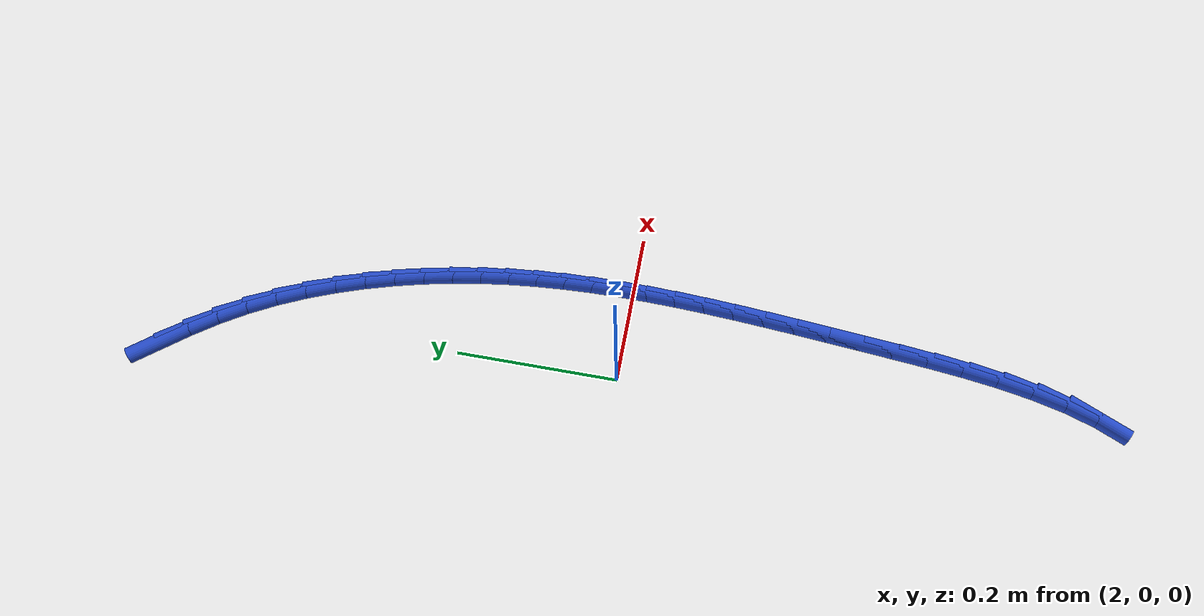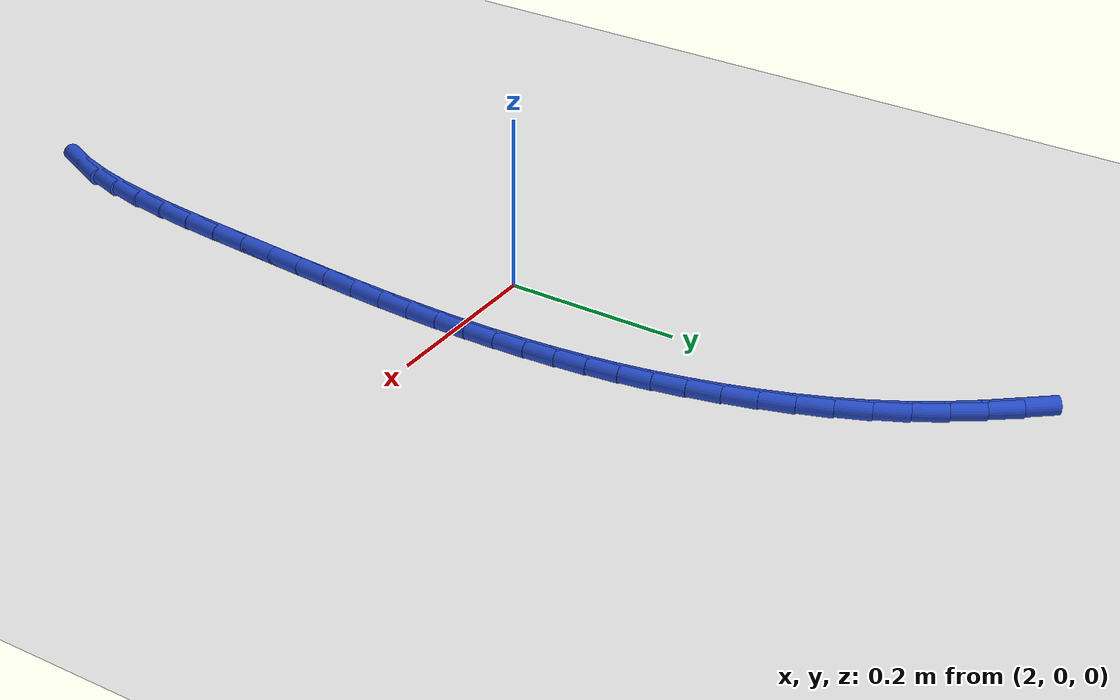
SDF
<sdf version="1.6">
 <world name="default">
  <model name="ground_plane">
   <static>1</static>
   <link name="link">
    <collision name="collision">
     <geometry><plane><normal>0 0 1</normal><size>100 100</size></plane></geometry>
     <surface><friction><ode><mu>100</mu><mu2>50</mu2></ode></friction></surface>
    </collision>
    <visual name="visual">
     <cast_shadows>0</cast_shadows>
     <geometry><plane><normal>0 0 1</normal><size>100 100</size></plane></geometry>
     <material>
      <script><uri>file://media/materials/scripts/gazebo.material</uri><name>Gazebo/WhiteGlow</name></script>
     </material>
    </visual>
   </link>
  </model>
  <model name="line">
   <link name="link_78">
    <pose>1.944774916218031 0.5652758298255309 0.01 0 1.57 -0.8791202230788645</pose>
    <collision name="collision">
     <geometry><cylinder><radius>0.01</radius><length>0.08</length></cylinder></geometry>
    </collision>
    <visual name="visual">
     <material>
      <script><name>Gazebo/Blue</name><uri>file://media/materials/scripts/gazebo.material</uri></script>
     </material>
     <geometry><cylinder><radius>0.01</radius><length>0.08</length></cylinder></geometry>
    </visual>
   </link>
   <link name="link_79">
    <pose>1.9686140292851744 0.5364901179324171 0.01 0 1.57 -0.9291676722682415</pose>
    <collision name="collision">
     <geometry><cylinder><radius>0.01</radius><length>0.08</length></cylinder></geometry>
    </collision>
    <visual name="visual">
     <material>
      <script><name>Gazebo/Blue</name><uri>file://media/materials/scripts/gazebo.material</uri></script>
     </material>
     <geometry><cylinder><radius>0.01</radius><length>0.08</length></cylinder></geometry>
    </visual>
   </link>
   <link name="link_80">
    <pose>1.9909600246307853 0.5065789390617728 0.01 0 1.57 -0.9943382158317963</pose>
    <collision name="collision">
     <geometry><cylinder><radius>0.01</radius><length>0.08</length></cylinder></geometry>
    </collision>
    <visual name="visual">
     <material>
      <script><name>Gazebo/Blue</name><uri>file://media/materials/scripts/gazebo.material</uri></script>
     </material>
     <geometry><cylinder><radius>0.01</radius><length>0.08</length></cylinder></geometry>
    </visual>
   </link>
   <link name="link_81">
    <pose>2.011349464866684 0.475216259039782 0.01 0 1.57 -1.0620050777316024</pose>
    <collision name="collision">
     <geometry><cylinder><radius>0.01</radius><length>0.08</length></cylinder></geometry>
    </collision>
    <visual name="visual">
     <material>
      <script><name>Gazebo/Blue</name><uri>file://media/materials/scripts/gazebo.material</uri></script>
     </material>
     <geometry><cylinder><radius>0.01</radius><length>0.08</length></cylinder></geometry>
    </visual>
   </link>
   <link name="link_82">
    <pose>2.0296409239849234 0.4424225161023843 0.01 0 1.57 -1.1236459514079808</pose>
    <collision name="collision">
     <geometry><cylinder><radius>0.01</radius><length>0.08</length></cylinder></geometry>
    </collision>
    <visual name="visual">
     <material>
      <script><name>Gazebo/Blue</name><uri>file://media/materials/scripts/gazebo.material</uri></script>
     </material>
     <geometry><cylinder><radius>0.01</radius><length>0.08</length></cylinder></geometry>
    </visual>
   </link>
   <link name="link_83">
    <pose>2.0459241757166997 0.4084669109072054 0.01 0 1.57 -1.1796291408422006</pose>
    <collision name="collision">
     <geometry><cylinder><radius>0.01</radius><length>0.08</length></cylinder></geometry>
    </collision>
    <visual name="visual">
     <material>
      <script><name>Gazebo/Blue</name><uri>file://media/materials/scripts/gazebo.material</uri></script>
     </material>
     <geometry><cylinder><radius>0.01</radius><length>0.08</length></cylinder></geometry>
    </visual>
   </link>
   <link name="link_84">
    <pose>2.0602940522385462 0.3736240868131309 0.01 0 1.57 -1.2305594287294674</pose>
    <collision name="collision">
     <geometry><cylinder><radius>0.01</radius><length>0.08</length></cylinder></geometry>
    </collision>
    <visual name="visual">
     <material>
      <script><name>Gazebo/Blue</name><uri>file://media/materials/scripts/gazebo.material</uri></script>
     </material>
     <geometry><cylinder><radius>0.01</radius><length>0.08</length></cylinder></geometry>
    </visual>
   </link>
   <link name="link_85">
    <pose>2.072845385726996 0.33816868717904797 0.01 0 1.57 -1.2770439581886877</pose>
    <collision name="collision">
     <geometry><cylinder><radius>0.01</radius><length>0.08</length></cylinder></geometry>
    </collision>
    <visual name="visual">
     <material>
      <script><name>Gazebo/Blue</name><uri>file://media/materials/scripts/gazebo.material</uri></script>
     </material>
     <geometry><cylinder><radius>0.01</radius><length>0.08</length></cylinder></geometry>
    </visual>
   </link>
   <link name="link_86">
    <pose>2.083673008358583 0.30237535536384347 0.01 0 1.57 -1.3196696410484323</pose>
    <collision name="collision">
     <geometry><cylinder><radius>0.01</radius><length>0.08</length></cylinder></geometry>
    </collision>
    <visual name="visual">
     <material>
      <script><name>Gazebo/Blue</name><uri>file://media/materials/scripts/gazebo.material</uri></script>
     </material>
     <geometry><cylinder><radius>0.01</radius><length>0.08</length></cylinder></geometry>
    </visual>
   </link>
   <link name="link_87">
    <pose>2.0928717523098395 0.2665187347264031 0.01 0 1.57 -1.3592023622118092</pose>
    <collision name="collision">
     <geometry><cylinder><radius>0.01</radius><length>0.08</length></cylinder></geometry>
    </collision>
    <visual name="visual">
     <material>
      <script><name>Gazebo/Blue</name><uri>file://media/materials/scripts/gazebo.material</uri></script>
     </material>
     <geometry><cylinder><radius>0.01</radius><length>0.08</length></cylinder></geometry>
    </visual>
   </link>
   <link name="link_88">
    <pose>2.100536354130952 0.23083779070639915 0.01 0 1.57 -1.3972172310658537</pose>
    <collision name="collision">
     <geometry><cylinder><radius>0.01</radius><length>0.08</length></cylinder></geometry>
    </collision>
    <visual name="visual">
     <material>
      <script><name>Gazebo/Blue</name><uri>file://media/materials/scripts/gazebo.material</uri></script>
     </material>
     <geometry><cylinder><radius>0.01</radius><length>0.08</length></cylinder></geometry>
    </visual>
   </link>
   <link name="link_89">
    <pose>2.1067609259574747 0.19533852141580477 0.01 0 1.57 -1.4338703650236162</pose>
    <collision name="collision">
     <geometry><cylinder><radius>0.01</radius><length>0.08</length></cylinder></geometry>
    </collision>
    <visual name="visual">
     <material>
      <script><name>Gazebo/Blue</name><uri>file://media/materials/scripts/gazebo.material</uri></script>
     </material>
     <geometry><cylinder><radius>0.01</radius><length>0.08</length></cylinder></geometry>
    </visual>
   </link>
   <link name="link_90">
    <pose>2.1116393293129714 0.1599334223433667 0.01 0 1.57 -1.4687164907419754</pose>
    <collision name="collision">
     <geometry><cylinder><radius>0.01</radius><length>0.08</length></cylinder></geometry>
    </collision>
    <visual name="visual">
     <material>
      <script><name>Gazebo/Blue</name><uri>file://media/materials/scripts/gazebo.material</uri></script>
     </material>
     <geometry><cylinder><radius>0.01</radius><length>0.08</length></cylinder></geometry>
    </visual>
   </link>
   <link name="link_91">
    <pose>2.1152654250460268 0.12453473714485148 0.01 0 1.57 -1.5013577793032287</pose>
    <collision name="collision">
     <geometry><cylinder><radius>0.01</radius><length>0.08</length></cylinder></geometry>
    </collision>
    <visual name="visual">
     <material>
      <script><name>Gazebo/Blue</name><uri>file://media/materials/scripts/gazebo.material</uri></script>
     </material>
     <geometry><cylinder><radius>0.01</radius><length>0.08</length></cylinder></geometry>
    </visual>
   </link>
   <link name="link_92">
    <pose>2.117733074005224 0.08905470947602682 0.01 0 1.57 -1.5314590585920094</pose>
    <collision name="collision">
     <geometry><cylinder><radius>0.01</radius><length>0.08</length></cylinder></geometry>
    </collision>
    <visual name="visual">
     <material>
      <script><name>Gazebo/Blue</name><uri>file://media/materials/scripts/gazebo.material</uri></script>
     </material>
     <geometry><cylinder><radius>0.01</radius><length>0.08</length></cylinder></geometry>
    </visual>
   </link>
   <link name="link_93">
    <pose>2.1191361370391486 0.053405582992660385 0.01 0 1.57 -1.5587560748483984</pose>
    <collision name="collision">
     <geometry><cylinder><radius>0.01</radius><length>0.08</length></cylinder></geometry>
    </collision>
    <visual name="visual">
     <material>
      <script><name>Gazebo/Blue</name><uri>file://media/materials/scripts/gazebo.material</uri></script>
     </material>
     <geometry><cylinder><radius>0.01</radius><length>0.08</length></cylinder></geometry>
    </visual>
   </link>
   <link name="link_94">
    <pose>2.1195684749963832 0.017499601350518687 0.01 0 1.57 1.5585343483553684</pose>
    <collision name="collision">
     <geometry><cylinder><radius>0.01</radius><length>0.08</length></cylinder></geometry>
    </collision>
    <visual name="visual">
     <material>
      <script><name>Gazebo/Blue</name><uri>file://media/materials/scripts/gazebo.material</uri></script>
     </material>
     <geometry><cylinder><radius>0.01</radius><length>0.08</length></cylinder></geometry>
    </visual>
   </link>
   <link name="link_95">
    <pose>2.119123948725513 -0.018750991794630575 0.01 0 1.57 1.5373455983250117</pose>
    <collision name="collision">
     <geometry><cylinder><radius>0.01</radius><length>0.08</length></cylinder></geometry>
    </collision>
    <visual name="visual">
     <material>
      <script><name>Gazebo/Blue</name><uri>file://media/materials/scripts/gazebo.material</uri></script>
     </material>
     <geometry><cylinder><radius>0.01</radius><length>0.08</length></cylinder></geometry>
    </visual>
   </link>
   <link name="link_96">
    <pose>2.1178964190751213 -0.05543395278702018 0.01 0 1.57 1.5193226625153515</pose>
    <collision name="collision">
     <geometry><cylinder><radius>0.01</radius><length>0.08</length></cylinder></geometry>
    </collision>
    <visual name="visual">
     <material>
      <script><name>Gazebo/Blue</name><uri>file://media/materials/scripts/gazebo.material</uri></script>
     </material>
     <geometry><cylinder><radius>0.01</radius><length>0.08</length></cylinder></geometry>
    </visual>
   </link>
   <link name="link_97">
    <pose>2.115979746893793 -0.09263703797088277 0.01 0 1.57 1.504459272738255</pose>
    <collision name="collision">
     <geometry><cylinder><radius>0.01</radius><length>0.08</length></cylinder></geometry>
    </collision>
    <visual name="visual">
     <material>
      <script><name>Gazebo/Blue</name><uri>file://media/materials/scripts/gazebo.material</uri></script>
     </material>
     <geometry><cylinder><radius>0.01</radius><length>0.08</length></cylinder></geometry>
    </visual>
   </link>
   <link name="link_98">
    <pose>2.113467793030111 -0.13044800369045023 0.01 0 1.57 1.492699437261412</pose>
    <collision name="collision">
     <geometry><cylinder><radius>0.01</radius><length>0.08</length></cylinder></geometry>
    </collision>
    <visual name="visual">
     <material>
      <script><name>Gazebo/Blue</name><uri>file://media/materials/scripts/gazebo.material</uri></script>
     </material>
     <geometry><cylinder><radius>0.01</radius><length>0.08</length></cylinder></geometry>
    </visual>
   </link>
   <link name="link_99">
    <pose>2.110454418332661 -0.16895460628995693 0.01 0 1.57 1.483946505702313</pose>
    <collision name="collision">
     <geometry><cylinder><radius>0.01</radius><length>0.08</length></cylinder></geometry>
    </collision>
    <visual name="visual">
     <material>
      <script><name>Gazebo/Blue</name><uri>file://media/materials/scripts/gazebo.material</uri></script>
     </material>
     <geometry><cylinder><radius>0.01</radius><length>0.08</length></cylinder></geometry>
    </visual>
   </link>
   <link name="link_100">
    <pose>2.1070334836500257 -0.2082446021136347 0.01 0 1.57 1.4780717698333152</pose>
    <collision name="collision">
     <geometry><cylinder><radius>0.01</radius><length>0.08</length></cylinder></geometry>
    </collision>
    <visual name="visual">
     <material>
      <script><name>Gazebo/Blue</name><uri>file://media/materials/scripts/gazebo.material</uri></script>
     </material>
     <geometry><cylinder><radius>0.01</radius><length>0.08</length></cylinder></geometry>
    </visual>
   </link>
   <link name="link_101">
    <pose>2.10329884983079 -0.2484057475057163 0.01 0 1.57 1.47492221544548</pose>
    <collision name="collision">
     <geometry><cylinder><radius>0.01</radius><length>0.08</length></cylinder></geometry>
    </collision>
    <visual name="visual">
     <material>
      <script><name>Gazebo/Blue</name><uri>file://media/materials/scripts/gazebo.material</uri></script>
     </material>
     <geometry><cylinder><radius>0.01</radius><length>0.08</length></cylinder></geometry>
    </visual>
   </link>
   <link name="link_102">
    <pose>2.0993443777235377 -0.28952579881043444 0.01 0 1.57 1.4741501102412535</pose>
    <collision name="collision">
     <geometry><cylinder><radius>0.01</radius><length>0.08</length></cylinder></geometry>
    </collision>
    <visual name="visual">
     <material>
      <script><name>Gazebo/Blue</name><uri>file://media/materials/scripts/gazebo.material</uri></script>
     </material>
     <geometry><cylinder><radius>0.01</radius><length>0.08</length></cylinder></geometry>
    </visual>
   </link>
   <link name="link_103">
    <pose>2.09525727240184 -0.3316833953058666 0.01 0 1.57 1.4693651388695954</pose>
    <collision name="collision">
     <geometry><cylinder><radius>0.01</radius><length>0.08</length></cylinder></geometry>
    </collision>
    <visual name="visual">
     <material>
      <script><name>Gazebo/Blue</name><uri>file://media/materials/scripts/gazebo.material</uri></script>
     </material>
     <geometry><cylinder><radius>0.01</radius><length>0.08</length></cylinder></geometry>
    </visual>
   </link>
   <link name="link_104">
    <pose>2.090886114992264 -0.37463030970582156 0.01 0 1.57 1.4528320907970085</pose>
    <collision name="collision">
     <geometry><cylinder><radius>0.01</radius><length>0.08</length></cylinder></geometry>
    </collision>
    <visual name="visual">
     <material>
      <script><name>Gazebo/Blue</name><uri>file://media/materials/scripts/gazebo.material</uri></script>
     </material>
     <geometry><cylinder><radius>0.01</radius><length>0.08</length></cylinder></geometry>
    </visual>
   </link>
   <link name="link_105">
    <pose>2.085780667340887 -0.41770899272278444 0.01 0 1.57 1.4235209904421262</pose>
    <collision name="collision">
     <geometry><cylinder><radius>0.01</radius><length>0.08</length></cylinder></geometry>
    </collision>
    <visual name="visual">
     <material>
      <script><name>Gazebo/Blue</name><uri>file://media/materials/scripts/gazebo.material</uri></script>
     </material>
     <geometry><cylinder><radius>0.01</radius><length>0.08</length></cylinder></geometry>
    </visual>
   </link>
   <link name="link_106">
    <pose>2.0794718051570897 -0.46023602488022175 0.01 0 1.57 1.3798591222710719</pose>
    <collision name="collision">
     <geometry><cylinder><radius>0.01</radius><length>0.08</length></cylinder></geometry>
    </collision>
    <visual name="visual">
     <material>
      <script><name>Gazebo/Blue</name><uri>file://media/materials/scripts/gazebo.material</uri></script>
     </material>
     <geometry><cylinder><radius>0.01</radius><length>0.08</length></cylinder></geometry>
    </visual>
   </link>
   <link name="link_107">
    <pose>2.071490404150254 -0.5015279867015969 0.01 0 1.57 1.3191431128845335</pose>
    <collision name="collision">
     <geometry><cylinder><radius>0.01</radius><length>0.08</length></cylinder></geometry>
    </collision>
    <visual name="visual">
     <material>
      <script><name>Gazebo/Blue</name><uri>file://media/materials/scripts/gazebo.material</uri></script>
     </material>
     <geometry><cylinder><radius>0.01</radius><length>0.08</length></cylinder></geometry>
    </visual>
   </link>
   <link name="link_108">
    <pose>2.06136734002976 -0.5409014587103745 0.01 0 1.57 1.2374249316537271</pose>
    <collision name="collision">
     <geometry><cylinder><radius>0.01</radius><length>0.08</length></cylinder></geometry>
    </collision>
    <visual name="visual">
     <material>
      <script><name>Gazebo/Blue</name><uri>file://media/materials/scripts/gazebo.material</uri></script>
     </material>
     <geometry><cylinder><radius>0.01</radius><length>0.08</length></cylinder></geometry>
    </visual>
   </link>
   <link name="link_109">
    <pose>2.048633488504989 -0.5776730214300192 0.01 0 1.57 1.1295968382932622</pose>
    <collision name="collision">
     <geometry><cylinder><radius>0.01</radius><length>0.08</length></cylinder></geometry>
    </collision>
    <visual name="visual">
     <material>
      <script><name>Gazebo/Blue</name><uri>file://media/materials/scripts/gazebo.material</uri></script>
     </material>
     <geometry><cylinder><radius>0.01</radius><length>0.08</length></cylinder></geometry>
    </visual>
   </link>
  </model>
 </world>
</sdf>
